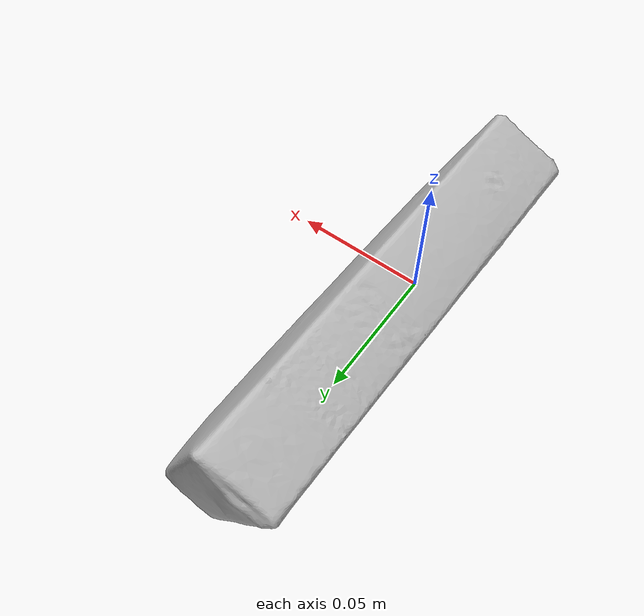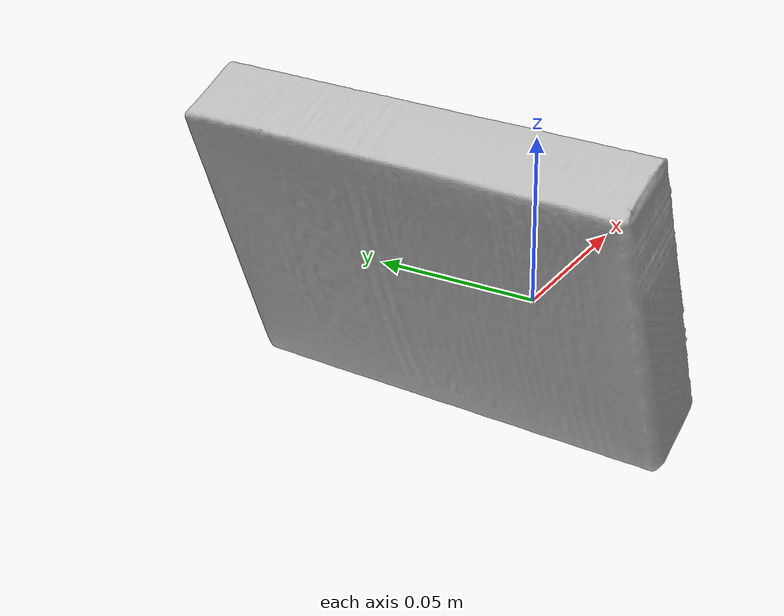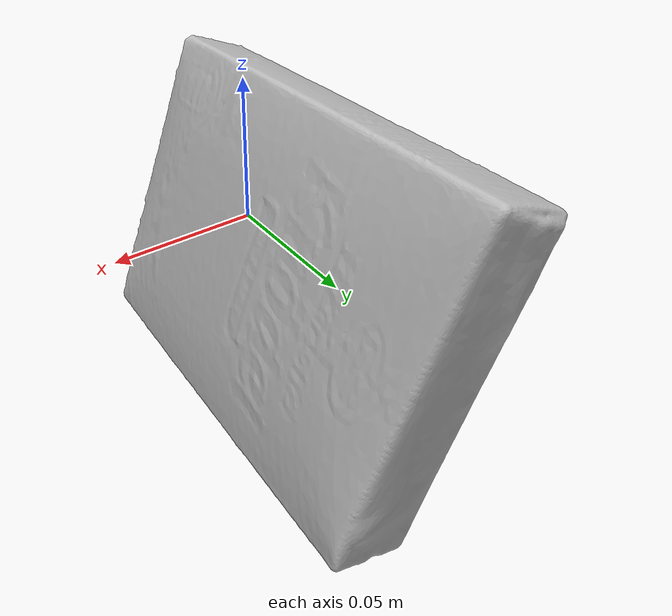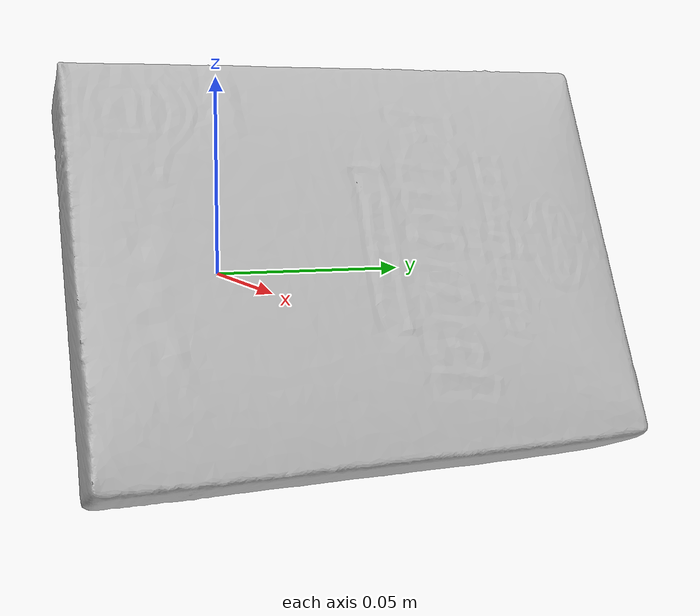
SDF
<?xml version='1.0'?>
<sdf version="1.4">
  <model name="PotatoeDumplings">
    <static>false</static>
    <link name="link">
      <inertial>
        <pose>0.007087887820919505 0.033069889211639274 2.0030098319845913e-05 -1.5886825345700504 0.3860017786801247 3.110777148528571</pose>
        <mass>0.047636239855076166</mass>
        <inertia>
          <ixx>0.00012148658552463558</ixx>
          <ixy>1.857037057417994e-21</ixy>
          <ixz>6.961158288996518e-21</ixz>
          <iyy>8.285992204200063e-05</iyy>
          <iyz>1.0006811107405281e-20</iyz>
          <izz>4.650748182015466e-05</izz>
        </inertia>
      </inertial>
      <collision name="collision">
        <geometry>
          <mesh>
            <!-- Use a downsampled mesh for collisions -->
            <uri>model:///PotatoeDumplings/PotatoeDumplings_250_collision.obj</uri>
	        </mesh>
        </geometry>
        <surface>
      </surface>
      </collision>
      <visual name="visual">
        <geometry>
          <mesh>
            <uri>model:///PotatoeDumplings/PotatoeDumplings_25k_tex.obj</uri>
	        </mesh>
        </geometry>
        <material>
          <script>
            <uri>model:///PotatoeDumplings/PotatoeDumplings.material</uri>
            <name>PotatoeDumplings</name>
          </script>
        </material>
      </visual>
    </link>
  </model>
</sdf>
